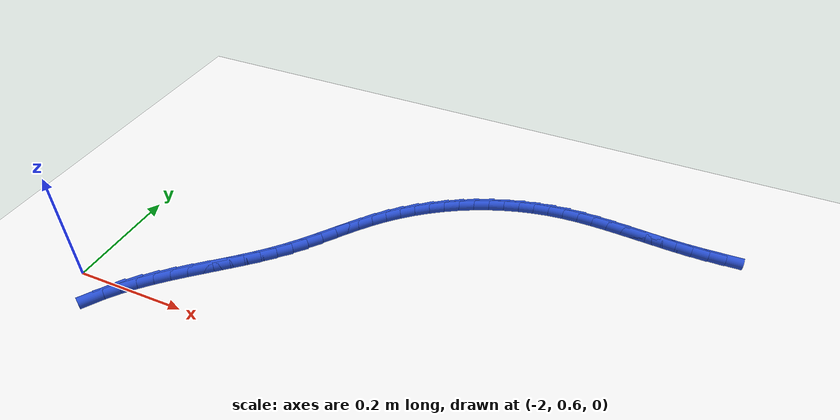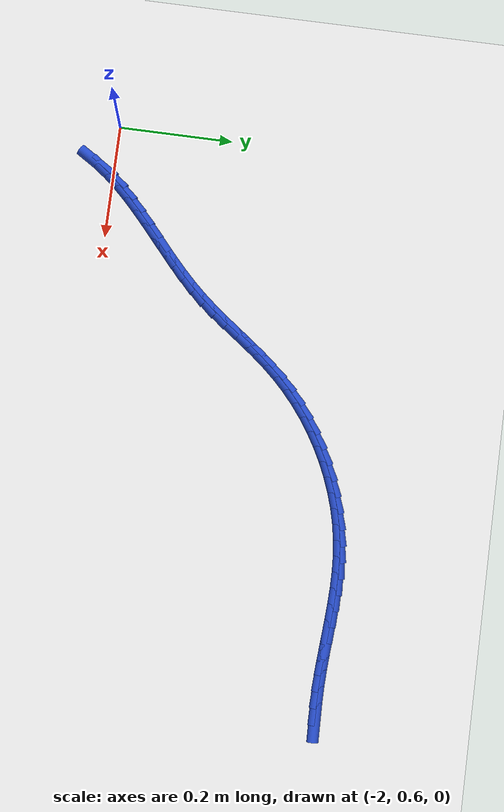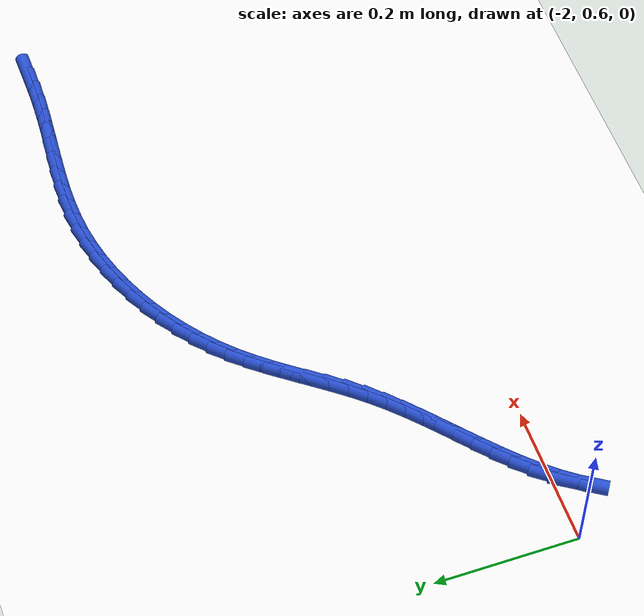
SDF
<sdf version="1.6">
 <world name="default">
  <model name="ground_plane">
   <static>1</static>
   <link name="link">
    <collision name="collision">
     <geometry><plane><normal>0 0 1</normal><size>100 100</size></plane></geometry>
     <surface><friction><ode><mu>100</mu><mu2>50</mu2></ode></friction></surface>
    </collision>
    <visual name="visual">
     <cast_shadows>0</cast_shadows>
     <geometry><plane><normal>0 0 1</normal><size>100 100</size></plane></geometry>
     <material>
      <script><uri>file://media/materials/scripts/gazebo.material</uri><name>Gazebo/WhiteGlow</name></script>
     </material>
    </visual>
   </link>
  </model>
  <model name="line">
   <link name="link_59">
    <pose>-1.0239852067497317 1.065641200882463 0.01 0 1.57 0.018910265171746717</pose>
    <collision name="collision">
     <geometry><cylinder><radius>0.01</radius><length>0.08</length></cylinder></geometry>
    </collision>
    <visual name="visual">
     <material>
      <script><name>Gazebo/Blue</name><uri>file://media/materials/scripts/gazebo.material</uri></script>
     </material>
     <geometry><cylinder><radius>0.01</radius><length>0.08</length></cylinder></geometry>
    </visual>
   </link>
   <link name="link_60">
    <pose>-1.052097862682928 1.065109519726511 0.01 0 1.57 -0.008601707539249446</pose>
    <collision name="collision">
     <geometry><cylinder><radius>0.01</radius><length>0.08</length></cylinder></geometry>
    </collision>
    <visual name="visual">
     <material>
      <script><name>Gazebo/Blue</name><uri>file://media/materials/scripts/gazebo.material</uri></script>
     </material>
     <geometry><cylinder><radius>0.01</radius><length>0.08</length></cylinder></geometry>
    </visual>
   </link>
   <link name="link_61">
    <pose>-1.080087070618817 1.0653502806453765 0.01 0 1.57 -0.04068234405713966</pose>
    <collision name="collision">
     <geometry><cylinder><radius>0.01</radius><length>0.08</length></cylinder></geometry>
    </collision>
    <visual name="visual">
     <material>
      <script><name>Gazebo/Blue</name><uri>file://media/materials/scripts/gazebo.material</uri></script>
     </material>
     <geometry><cylinder><radius>0.01</radius><length>0.08</length></cylinder></geometry>
    </visual>
   </link>
   <link name="link_62">
    <pose>-1.1078951767886323 1.0664822041215596 0.01 0 1.57 -0.0628856921022526</pose>
    <collision name="collision">
     <geometry><cylinder><radius>0.01</radius><length>0.08</length></cylinder></geometry>
    </collision>
    <visual name="visual">
     <material>
      <script><name>Gazebo/Blue</name><uri>file://media/materials/scripts/gazebo.material</uri></script>
     </material>
     <geometry><cylinder><radius>0.01</radius><length>0.08</length></cylinder></geometry>
    </visual>
   </link>
   <link name="link_63">
    <pose>-1.1355358306674401 1.0682227007045482 0.01 0 1.57 -0.07366438019306934</pose>
    <collision name="collision">
     <geometry><cylinder><radius>0.01</radius><length>0.08</length></cylinder></geometry>
    </collision>
    <visual name="visual">
     <material>
      <script><name>Gazebo/Blue</name><uri>file://media/materials/scripts/gazebo.material</uri></script>
     </material>
     <geometry><cylinder><radius>0.01</radius><length>0.08</length></cylinder></geometry>
    </visual>
   </link>
   <link name="link_64">
    <pose>-1.1630293474361602 1.0702516649231524 0.01 0 1.57 -0.07285466291696208</pose>
    <collision name="collision">
     <geometry><cylinder><radius>0.01</radius><length>0.08</length></cylinder></geometry>
    </collision>
    <visual name="visual">
     <material>
      <script><name>Gazebo/Blue</name><uri>file://media/materials/scripts/gazebo.material</uri></script>
     </material>
     <geometry><cylinder><radius>0.01</radius><length>0.08</length></cylinder></geometry>
    </visual>
   </link>
   <link name="link_65">
    <pose>-1.1903960422757134 1.0722489913061835 0.01 0 1.57 -0.06029263548911606</pose>
    <collision name="collision">
     <geometry><cylinder><radius>0.01</radius><length>0.08</length></cylinder></geometry>
    </collision>
    <visual name="visual">
     <material>
      <script><name>Gazebo/Blue</name><uri>file://media/materials/scripts/gazebo.material</uri></script>
     </material>
     <geometry><cylinder><radius>0.01</radius><length>0.08</length></cylinder></geometry>
    </visual>
   </link>
   <link name="link_66">
    <pose>-1.2176562303670206 1.0738945743824517 0.01 0 1.57 -0.03581798692901086</pose>
    <collision name="collision">
     <geometry><cylinder><radius>0.01</radius><length>0.08</length></cylinder></geometry>
    </collision>
    <visual name="visual">
     <material>
      <script><name>Gazebo/Blue</name><uri>file://media/materials/scripts/gazebo.material</uri></script>
     </material>
     <geometry><cylinder><radius>0.01</radius><length>0.08</length></cylinder></geometry>
    </visual>
   </link>
   <link name="link_67">
    <pose>-1.2448302268910023 1.0748683086807689 0.01 0 1.57 0.0006721214155758735</pose>
    <collision name="collision">
     <geometry><cylinder><radius>0.01</radius><length>0.08</length></cylinder></geometry>
    </collision>
    <visual name="visual">
     <material>
      <script><name>Gazebo/Blue</name><uri>file://media/materials/scripts/gazebo.material</uri></script>
     </material>
     <geometry><cylinder><radius>0.01</radius><length>0.08</length></cylinder></geometry>
    </visual>
   </link>
   <link name="link_68">
    <pose>-1.2719383470285779 1.0748500887299448 0.01 0 1.57 0.04911618964584172</pose>
    <collision name="collision">
     <geometry><cylinder><radius>0.01</radius><length>0.08</length></cylinder></geometry>
    </collision>
    <visual name="visual">
     <material>
      <script><name>Gazebo/Blue</name><uri>file://media/materials/scripts/gazebo.material</uri></script>
     </material>
     <geometry><cylinder><radius>0.01</radius><length>0.08</length></cylinder></geometry>
    </visual>
   </link>
   <link name="link_69">
    <pose>-1.2990009059606693 1.073519809058791 0.01 0 1.57 0.10910869469622773</pose>
    <collision name="collision">
     <geometry><cylinder><radius>0.01</radius><length>0.08</length></cylinder></geometry>
    </collision>
    <visual name="visual">
     <material>
      <script><name>Gazebo/Blue</name><uri>file://media/materials/scripts/gazebo.material</uri></script>
     </material>
     <geometry><cylinder><radius>0.01</radius><length>0.08</length></cylinder></geometry>
    </visual>
   </link>
   <link name="link_70">
    <pose>-1.3260379578470167 1.0705580693996026 0.01 0 1.57 0.17586983145418683</pose>
    <collision name="collision">
     <geometry><cylinder><radius>0.01</radius><length>0.08</length></cylinder></geometry>
    </collision>
    <visual name="visual">
     <material>
      <script><name>Gazebo/Blue</name><uri>file://media/materials/scripts/gazebo.material</uri></script>
     </material>
     <geometry><cylinder><radius>0.01</radius><length>0.08</length></cylinder></geometry>
    </visual>
   </link>
   <link name="link_71">
    <pose>-1.3530263998001533 1.0657620673027055 0.01 0 1.57 0.24079997842728526</pose>
    <collision name="collision">
     <geometry><cylinder><radius>0.01</radius><length>0.08</length></cylinder></geometry>
    </collision>
    <visual name="visual">
     <material>
      <script><name>Gazebo/Blue</name><uri>file://media/materials/scripts/gazebo.material</uri></script>
     </material>
     <geometry><cylinder><radius>0.01</radius><length>0.08</length></cylinder></geometry>
    </visual>
   </link>
   <link name="link_72">
    <pose>-1.3798522275476073 1.0591745894825129 0.01 0 1.57 0.3032984700191152</pose>
    <collision name="collision">
     <geometry><cylinder><radius>0.01</radius><length>0.08</length></cylinder></geometry>
    </collision>
    <visual name="visual">
     <material>
      <script><name>Gazebo/Blue</name><uri>file://media/materials/scripts/gazebo.material</uri></script>
     </material>
     <geometry><cylinder><radius>0.01</radius><length>0.08</length></cylinder></geometry>
    </visual>
   </link>
   <link name="link_73">
    <pose>-1.4063899311477015 1.0508695076328594 0.01 0 1.57 0.3638715725081384</pose>
    <collision name="collision">
     <geometry><cylinder><radius>0.01</radius><length>0.08</length></cylinder></geometry>
    </collision>
    <visual name="visual">
     <material>
      <script><name>Gazebo/Blue</name><uri>file://media/materials/scripts/gazebo.material</uri></script>
     </material>
     <geometry><cylinder><radius>0.01</radius><length>0.08</length></cylinder></geometry>
    </visual>
   </link>
   <link name="link_74">
    <pose>-1.4325140006587587 1.04092069344758 0.01 0 1.57 0.4230313280591888</pose>
    <collision name="collision">
     <geometry><cylinder><radius>0.01</radius><length>0.08</length></cylinder></geometry>
    </collision>
    <visual name="visual">
     <material>
      <script><name>Gazebo/Blue</name><uri>file://media/materials/scripts/gazebo.material</uri></script>
     </material>
     <geometry><cylinder><radius>0.01</radius><length>0.08</length></cylinder></geometry>
    </visual>
   </link>
   <link name="link_75">
    <pose>-1.4580989261391004 1.02940201862051 0.01 0 1.57 0.48129039509841565</pose>
    <collision name="collision">
     <geometry><cylinder><radius>0.01</radius><length>0.08</length></cylinder></geometry>
    </collision>
    <visual name="visual">
     <material>
      <script><name>Gazebo/Blue</name><uri>file://media/materials/scripts/gazebo.material</uri></script>
     </material>
     <geometry><cylinder><radius>0.01</radius><length>0.08</length></cylinder></geometry>
    </visual>
   </link>
   <link name="link_76">
    <pose>-1.4830191976470493 1.0163873548454838 0.01 0 1.57 0.5391605565181522</pose>
    <collision name="collision">
     <geometry><cylinder><radius>0.01</radius><length>0.08</length></cylinder></geometry>
    </collision>
    <visual name="visual">
     <material>
      <script><name>Gazebo/Blue</name><uri>file://media/materials/scripts/gazebo.material</uri></script>
     </material>
     <geometry><cylinder><radius>0.01</radius><length>0.08</length></cylinder></geometry>
    </visual>
   </link>
   <link name="link_77">
    <pose>-1.5071493052409286 1.0019505738163368 0.01 0 1.57 0.5971534359102952</pose>
    <collision name="collision">
     <geometry><cylinder><radius>0.01</radius><length>0.08</length></cylinder></geometry>
    </collision>
    <visual name="visual">
     <material>
      <script><name>Gazebo/Blue</name><uri>file://media/materials/scripts/gazebo.material</uri></script>
     </material>
     <geometry><cylinder><radius>0.01</radius><length>0.08</length></cylinder></geometry>
    </visual>
   </link>
   <link name="link_78">
    <pose>-1.5303637389790599 0.986165547226903 0.01 0 1.57 0.6557821618054867</pose>
    <collision name="collision">
     <geometry><cylinder><radius>0.01</radius><length>0.08</length></cylinder></geometry>
    </collision>
    <visual name="visual">
     <material>
      <script><name>Gazebo/Blue</name><uri>file://media/materials/scripts/gazebo.material</uri></script>
     </material>
     <geometry><cylinder><radius>0.01</radius><length>0.08</length></cylinder></geometry>
    </visual>
   </link>
   <link name="link_79">
    <pose>-1.552536988919766 0.9691061467710185 0.01 0 1.57 0.7155628107643844</pose>
    <collision name="collision">
     <geometry><cylinder><radius>0.01</radius><length>0.08</length></cylinder></geometry>
    </collision>
    <visual name="visual">
     <material>
      <script><name>Gazebo/Blue</name><uri>file://media/materials/scripts/gazebo.material</uri></script>
     </material>
     <geometry><cylinder><radius>0.01</radius><length>0.08</length></cylinder></geometry>
    </visual>
   </link>
   <link name="link_80">
    <pose>-1.5735435451213688 0.9508462441425176 0.01 0 1.57 0.7770124968037986</pose>
    <collision name="collision">
     <geometry><cylinder><radius>0.01</radius><length>0.08</length></cylinder></geometry>
    </collision>
    <visual name="visual">
     <material>
      <script><name>Gazebo/Blue</name><uri>file://media/materials/scripts/gazebo.material</uri></script>
     </material>
     <geometry><cylinder><radius>0.01</radius><length>0.08</length></cylinder></geometry>
    </visual>
   </link>
   <link name="link_81">
    <pose>-1.5932579513049505 0.9314597329017904 0.01 0 1.57 0.8368365890745704</pose>
    <collision name="collision">
     <geometry><cylinder><radius>0.01</radius><length>0.08</length></cylinder></geometry>
    </collision>
    <visual name="visual">
     <material>
      <script><name>Gazebo/Blue</name><uri>file://media/materials/scripts/gazebo.material</uri></script>
     </material>
     <geometry><cylinder><radius>0.01</radius><length>0.08</length></cylinder></geometry>
    </visual>
   </link>
   <link name="link_82">
    <pose>-1.6116577751289602 0.9110624869070726 0.01 0 1.57 0.8832155386923677</pose>
    <collision name="collision">
     <geometry><cylinder><radius>0.01</radius><length>0.08</length></cylinder></geometry>
    </collision>
    <visual name="visual">
     <material>
      <script><name>Gazebo/Blue</name><uri>file://media/materials/scripts/gazebo.material</uri></script>
     </material>
     <geometry><cylinder><radius>0.01</radius><length>0.08</length></cylinder></geometry>
    </visual>
   </link>
   <link name="link_83">
    <pose>-1.6290382020188816 0.8898998032244639 0.01 0 1.57 0.9134418893568075</pose>
    <collision name="collision">
     <geometry><cylinder><radius>0.01</radius><length>0.08</length></cylinder></geometry>
    </collision>
    <visual name="visual">
     <material>
      <script><name>Gazebo/Blue</name><uri>file://media/materials/scripts/gazebo.material</uri></script>
     </material>
     <geometry><cylinder><radius>0.01</radius><length>0.08</length></cylinder></geometry>
    </visual>
   </link>
   <link name="link_84">
    <pose>-1.6457554309721134 0.86824184079185 0.01 0 1.57 0.9273561019926817</pose>
    <collision name="collision">
     <geometry><cylinder><radius>0.01</radius><length>0.08</length></cylinder></geometry>
    </collision>
    <visual name="visual">
     <material>
      <script><name>Gazebo/Blue</name><uri>file://media/materials/scripts/gazebo.material</uri></script>
     </material>
     <geometry><cylinder><radius>0.01</radius><length>0.08</length></cylinder></geometry>
    </visual>
   </link>
   <link name="link_85">
    <pose>-1.6621656609860547 0.8463587585471153 0.01 0 1.57 0.924928588643561</pose>
    <collision name="collision">
     <geometry><cylinder><radius>0.01</radius><length>0.08</length></cylinder></geometry>
    </collision>
    <visual name="visual">
     <material>
      <script><name>Gazebo/Blue</name><uri>file://media/materials/scripts/gazebo.material</uri></script>
     </material>
     <geometry><cylinder><radius>0.01</radius><length>0.08</length></cylinder></geometry>
    </visual>
   </link>
   <link name="link_86">
    <pose>-1.6786250910581033 0.8245207154281452 0.01 0 1.57 0.9061492830883969</pose>
    <collision name="collision">
     <geometry><cylinder><radius>0.01</radius><length>0.08</length></cylinder></geometry>
    </collision>
    <visual name="visual">
     <material>
      <script><name>Gazebo/Blue</name><uri>file://media/materials/scripts/gazebo.material</uri></script>
     </material>
     <geometry><cylinder><radius>0.01</radius><length>0.08</length></cylinder></geometry>
    </visual>
   </link>
   <link name="link_87">
    <pose>-1.695489920185658 0.8029978703728246 0.01 0 1.57 0.8710471572612457</pose>
    <collision name="collision">
     <geometry><cylinder><radius>0.01</radius><length>0.08</length></cylinder></geometry>
    </collision>
    <visual name="visual">
     <material>
      <script><name>Gazebo/Blue</name><uri>file://media/materials/scripts/gazebo.material</uri></script>
     </material>
     <geometry><cylinder><radius>0.01</radius><length>0.08</length></cylinder></geometry>
    </visual>
   </link>
   <link name="link_88">
    <pose>-1.7131163473661175 0.7820603823190381 0.01 0 1.57 0.8219892839149651</pose>
    <collision name="collision">
     <geometry><cylinder><radius>0.01</radius><length>0.08</length></cylinder></geometry>
    </collision>
    <visual name="visual">
     <material>
      <script><name>Gazebo/Blue</name><uri>file://media/materials/scripts/gazebo.material</uri></script>
     </material>
     <geometry><cylinder><radius>0.01</radius><length>0.08</length></cylinder></geometry>
    </visual>
   </link>
   <link name="link_89">
    <pose>-1.731812663983356 0.7619432021711732 0.01 0 1.57 0.7769132087016297</pose>
    <collision name="collision">
     <geometry><cylinder><radius>0.01</radius><length>0.08</length></cylinder></geometry>
    </collision>
    <visual name="visual">
     <material>
      <script><name>Gazebo/Blue</name><uri>file://media/materials/scripts/gazebo.material</uri></script>
     </material>
     <geometry><cylinder><radius>0.01</radius><length>0.08</length></cylinder></geometry>
    </visual>
   </link>
   <link name="link_90">
    <pose>-1.7514944155465604 0.7425926459195643 0.01 0 1.57 0.7442838162037978</pose>
    <collision name="collision">
     <geometry><cylinder><radius>0.01</radius><length>0.08</length></cylinder></geometry>
    </collision>
    <visual name="visual">
     <material>
      <script><name>Gazebo/Blue</name><uri>file://media/materials/scripts/gazebo.material</uri></script>
     </material>
     <geometry><cylinder><radius>0.01</radius><length>0.08</length></cylinder></geometry>
    </visual>
   </link>
   <link name="link_91">
    <pose>-1.7718847546140442 0.723813637050083 0.01 0 1.57 0.7238495366651531</pose>
    <collision name="collision">
     <geometry><cylinder><radius>0.01</radius><length>0.08</length></cylinder></geometry>
    </collision>
    <visual name="visual">
     <material>
      <script><name>Gazebo/Blue</name><uri>file://media/materials/scripts/gazebo.material</uri></script>
     </material>
     <geometry><cylinder><radius>0.01</radius><length>0.08</length></cylinder></geometry>
    </visual>
   </link>
   <link name="link_92">
    <pose>-1.7927055148411746 0.7054101297667736 0.01 0 1.57 0.7153809366306062</pose>
    <collision name="collision">
     <geometry><cylinder><radius>0.01</radius><length>0.08</length></cylinder></geometry>
    </collision>
    <visual name="visual">
     <material>
      <script><name>Gazebo/Blue</name><uri>file://media/materials/scripts/gazebo.material</uri></script>
     </material>
     <geometry><cylinder><radius>0.01</radius><length>0.08</length></cylinder></geometry>
    </visual>
   </link>
   <link name="link_93">
    <pose>-1.8136785298833187 0.6871860782736811 0.01 0 1.57 0.71881440301614</pose>
    <collision name="collision">
     <geometry><cylinder><radius>0.01</radius><length>0.08</length></cylinder></geometry>
    </collision>
    <visual name="visual">
     <material>
      <script><name>Gazebo/Blue</name><uri>file://media/materials/scripts/gazebo.material</uri></script>
     </material>
     <geometry><cylinder><radius>0.01</radius><length>0.08</length></cylinder></geometry>
    </visual>
   </link>
   <link name="link_94">
    <pose>-1.834525633395842 0.6689454367748503 0.01 0 1.57 0.7342875107136613</pose>
    <collision name="collision">
     <geometry><cylinder><radius>0.01</radius><length>0.08</length></cylinder></geometry>
    </collision>
    <visual name="visual">
     <material>
      <script><name>Gazebo/Blue</name><uri>file://media/materials/scripts/gazebo.material</uri></script>
     </material>
     <geometry><cylinder><radius>0.01</radius><length>0.08</length></cylinder></geometry>
    </visual>
   </link>
   <link name="link_95">
    <pose>-1.8549686590341121 0.6504921594743257 0.01 0 1.57 0.7621305157518604</pose>
    <collision name="collision">
     <geometry><cylinder><radius>0.01</radius><length>0.08</length></cylinder></geometry>
    </collision>
    <visual name="visual">
     <material>
      <script><name>Gazebo/Blue</name><uri>file://media/materials/scripts/gazebo.material</uri></script>
     </material>
     <geometry><cylinder><radius>0.01</radius><length>0.08</length></cylinder></geometry>
    </visual>
   </link>
   <link name="link_96">
    <pose>-1.8747294404534953 0.6316302005761519 0.01 0 1.57 0.8028086506044363</pose>
    <collision name="collision">
     <geometry><cylinder><radius>0.01</radius><length>0.08</length></cylinder></geometry>
    </collision>
    <visual name="visual">
     <material>
      <script><name>Gazebo/Blue</name><uri>file://media/materials/scripts/gazebo.material</uri></script>
     </material>
     <geometry><cylinder><radius>0.01</radius><length>0.08</length></cylinder></geometry>
    </visual>
   </link>
   <link name="link_97">
    <pose>-1.8935298113093582 0.6121635142843739 0.01 0 1.57 0.8567996777990712</pose>
    <collision name="collision">
     <geometry><cylinder><radius>0.01</radius><length>0.08</length></cylinder></geometry>
    </collision>
    <visual name="visual">
     <material>
      <script><name>Gazebo/Blue</name><uri>file://media/materials/scripts/gazebo.material</uri></script>
     </material>
     <geometry><cylinder><radius>0.01</radius><length>0.08</length></cylinder></geometry>
    </visual>
   </link>
   <link name="link_98">
    <pose>-1.9110916052570674 0.5918960548030363 0.01 0 1.57 0.9243782235198945</pose>
    <collision name="collision">
     <geometry><cylinder><radius>0.01</radius><length>0.08</length></cylinder></geometry>
    </collision>
    <visual name="visual">
     <material>
      <script><name>Gazebo/Blue</name><uri>file://media/materials/scripts/gazebo.material</uri></script>
     </material>
     <geometry><cylinder><radius>0.01</radius><length>0.08</length></cylinder></geometry>
    </visual>
   </link>
   <link name="link_99">
    <pose>-1.927136848660538 0.570631904398048 0.01 0 1.57 1.0001258543361473</pose>
    <collision name="collision">
     <geometry><cylinder><radius>0.01</radius><length>0.08</length></cylinder></geometry>
    </collision>
    <visual name="visual">
     <material>
      <script><name>Gazebo/Blue</name><uri>file://media/materials/scripts/gazebo.material</uri></script>
     </material>
     <geometry><cylinder><radius>0.01</radius><length>0.08</length></cylinder></geometry>
    </visual>
   </link>
  </model>
 </world>
</sdf>
